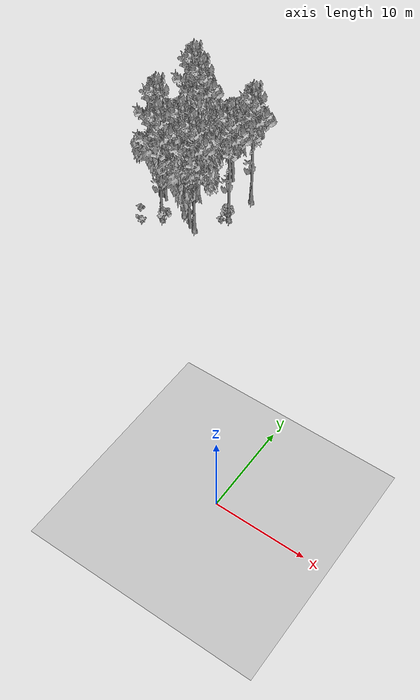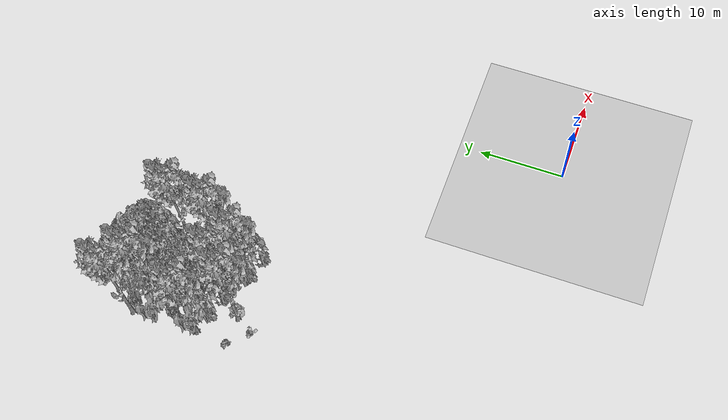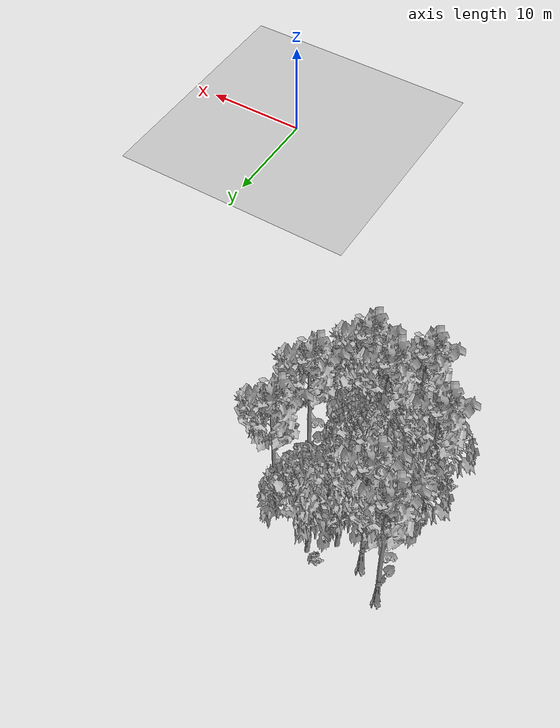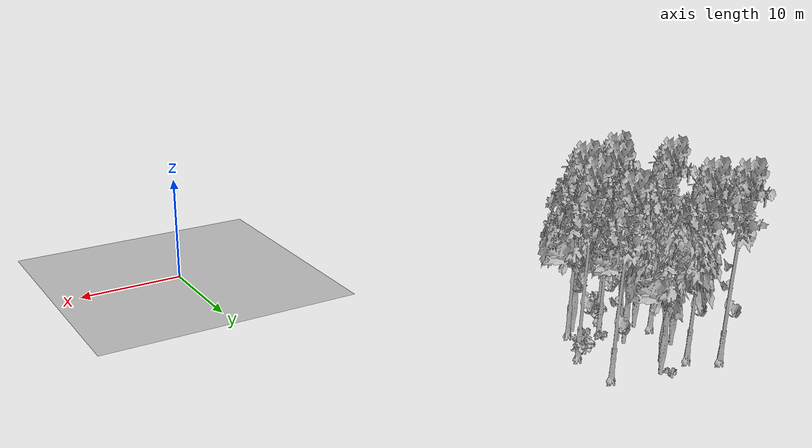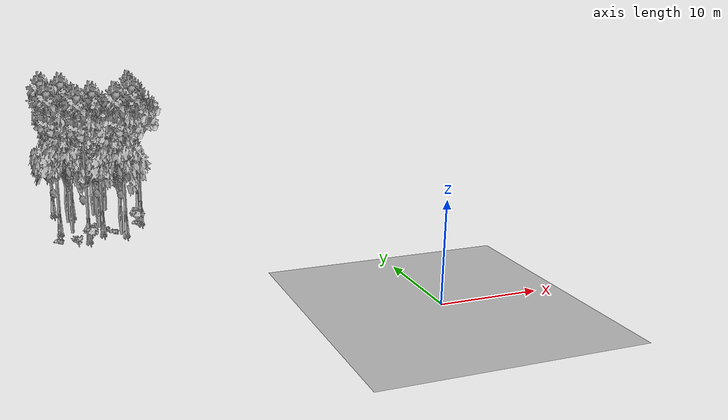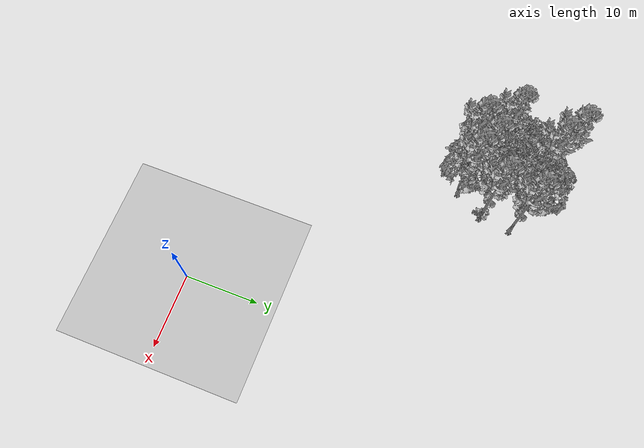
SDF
<sdf version="1.7">
 <world name="default">
  <model name="ground_plane">
   <static>1</static>
   <link name="link">
    <collision name="collision">
     <pose>-50 0 0 0 -0 0</pose>
     <geometry><plane><normal>0 0 1</normal><size>80 80</size></plane></geometry>
     <surface><contact><ode><min_depth>0.01</min_depth><max_vel>0</max_vel></ode></contact></surface>
    </collision>
    <visual name="grass">
     <cast_shadows>0</cast_shadows>
     <geometry>
      <mesh>
       <scale>0.46714285714285714 0.46714285714285714 0.1</scale>
       <uri>file://grass_plane/meshes/grass_plane.dae</uri>
      </mesh>
     </geometry>
    </visual>
   </link>
  </model>
  <model name="Tree 145">
   <static>1</static>
   <pose>-25.407689227858192 39.17718695805621 0 1.57079 -0 0</pose>
   <link name="link">
    <collision name="collision">
     <geometry><mesh><scale>3.5 5 3.5</scale><uri>model://tree_2/meshes/tree_2.obj</uri></mesh></geometry>
    </collision>
    <visual name="visual">
     <geometry><mesh><scale>3.5 5 3.5</scale><uri>model://tree_2/meshes/tree_2.obj</uri></mesh></geometry>
    </visual>
   </link>
  </model>
  <model name="Tree 158">
   <static>1</static>
   <pose>-26.893849686066908 32.80640094925998 0 1.57079 -0 0</pose>
   <link name="link">
    <collision name="collision">
     <geometry><mesh><scale>3.5 5 3.5</scale><uri>model://tree_2/meshes/tree_2.obj</uri></mesh></geometry>
    </collision>
    <visual name="visual">
     <geometry><mesh><scale>3.5 5 3.5</scale><uri>model://tree_2/meshes/tree_2.obj</uri></mesh></geometry>
    </visual>
   </link>
  </model>
  <model name="Tree 160">
   <static>1</static>
   <pose>-31.537245827972235 39.92862697853214 0 1.57079 -0 0</pose>
   <link name="link">
    <collision name="collision">
     <geometry><mesh><scale>3.5 5 3.5</scale><uri>model://tree_9/meshes/tree_9.obj</uri></mesh></geometry>
    </collision>
    <visual name="visual">
     <geometry><mesh><scale>3.5 5 3.5</scale><uri>model://tree_9/meshes/tree_9.obj</uri></mesh></geometry>
    </visual>
   </link>
  </model>
  <model name="Tree 196">
   <static>1</static>
   <pose>-27.047390081585156 37.61616186067823 0 1.57079 -0 0</pose>
   <link name="link">
    <collision name="collision">
     <geometry><mesh><scale>3.5 5 3.5</scale><uri>model://tree_2/meshes/tree_2.obj</uri></mesh></geometry>
    </collision>
    <visual name="visual">
     <geometry><mesh><scale>3.5 5 3.5</scale><uri>model://tree_2/meshes/tree_2.obj</uri></mesh></geometry>
    </visual>
   </link>
  </model>
  <model name="Tree 221">
   <static>1</static>
   <pose>-26.66061107534363 30.78839807381216 0 1.57079 -0 0</pose>
   <link name="link">
    <collision name="collision">
     <geometry><mesh><scale>3.5 5 3.5</scale><uri>model://tree_9/meshes/tree_9.obj</uri></mesh></geometry>
    </collision>
    <visual name="visual">
     <geometry><mesh><scale>3.5 5 3.5</scale><uri>model://tree_9/meshes/tree_9.obj</uri></mesh></geometry>
    </visual>
   </link>
  </model>
  <model name="Tree 232">
   <static>1</static>
   <pose>-28.47284868733135 28.7455706196951 0 1.57079 -0 0</pose>
   <link name="link">
    <collision name="collision">
     <geometry><mesh><scale>3.5 5 3.5</scale><uri>model://tree_9/meshes/tree_9.obj</uri></mesh></geometry>
    </collision>
    <visual name="visual">
     <geometry><mesh><scale>3.5 5 3.5</scale><uri>model://tree_9/meshes/tree_9.obj</uri></mesh></geometry>
    </visual>
   </link>
  </model>
  <model name="Tree 249">
   <static>1</static>
   <pose>-21.50053566201704 37.60155134436775 0 1.57079 -0 0</pose>
   <link name="link">
    <collision name="collision">
     <geometry><mesh><scale>3.5 5 3.5</scale><uri>model://tree_9/meshes/tree_9.obj</uri></mesh></geometry>
    </collision>
    <visual name="visual">
     <geometry><mesh><scale>3.5 5 3.5</scale><uri>model://tree_9/meshes/tree_9.obj</uri></mesh></geometry>
    </visual>
   </link>
  </model>
  <model name="Tree 253">
   <static>1</static>
   <pose>-24.864272763220793 29.417711909350118 0 1.57079 -0 0</pose>
   <link name="link">
    <collision name="collision">
     <geometry><mesh><scale>3.5 5 3.5</scale><uri>model://tree_2/meshes/tree_2.obj</uri></mesh></geometry>
    </collision>
    <visual name="visual">
     <geometry><mesh><scale>3.5 5 3.5</scale><uri>model://tree_2/meshes/tree_2.obj</uri></mesh></geometry>
    </visual>
   </link>
  </model>
  <model name="Tree 352">
   <static>1</static>
   <pose>-29.346305046535477 38.34455643908667 0 1.57079 -0 0</pose>
   <link name="link">
    <collision name="collision">
     <geometry><mesh><scale>3.5 5 3.5</scale><uri>model://tree_9/meshes/tree_9.obj</uri></mesh></geometry>
    </collision>
    <visual name="visual">
     <geometry><mesh><scale>3.5 5 3.5</scale><uri>model://tree_9/meshes/tree_9.obj</uri></mesh></geometry>
    </visual>
   </link>
  </model>
  <model name="Tree 391">
   <static>1</static>
   <pose>-31.33401969963979 32.33763831418214 0 1.57079 -0 0</pose>
   <link name="link">
    <collision name="collision">
     <geometry><mesh><scale>3.5 5 3.5</scale><uri>model://tree_9/meshes/tree_9.obj</uri></mesh></geometry>
    </collision>
    <visual name="visual">
     <geometry><mesh><scale>3.5 5 3.5</scale><uri>model://tree_9/meshes/tree_9.obj</uri></mesh></geometry>
    </visual>
   </link>
  </model>
  <model name="Tree 406">
   <static>1</static>
   <pose>-30.235914469718587 35.79286397625553 0 1.57079 -0 0</pose>
   <link name="link">
    <collision name="collision">
     <geometry><mesh><scale>3.5 5 3.5</scale><uri>model://tree_2/meshes/tree_2.obj</uri></mesh></geometry>
    </collision>
    <visual name="visual">
     <geometry><mesh><scale>3.5 5 3.5</scale><uri>model://tree_2/meshes/tree_2.obj</uri></mesh></geometry>
    </visual>
   </link>
  </model>
  <model name="Tree 422">
   <static>1</static>
   <pose>-24.210609356979056 29.510964219873827 0 1.57079 -0 0</pose>
   <link name="link">
    <collision name="collision">
     <geometry><mesh><scale>3.5 5 3.5</scale><uri>model://tree_9/meshes/tree_9.obj</uri></mesh></geometry>
    </collision>
    <visual name="visual">
     <geometry><mesh><scale>3.5 5 3.5</scale><uri>model://tree_9/meshes/tree_9.obj</uri></mesh></geometry>
    </visual>
   </link>
  </model>
  <model name="Tree 446">
   <static>1</static>
   <pose>-21.858472339495734 33.3301850074763 0 1.57079 -0 0</pose>
   <link name="link">
    <collision name="collision">
     <geometry><mesh><scale>3.5 5 3.5</scale><uri>model://tree_9/meshes/tree_9.obj</uri></mesh></geometry>
    </collision>
    <visual name="visual">
     <geometry><mesh><scale>3.5 5 3.5</scale><uri>model://tree_9/meshes/tree_9.obj</uri></mesh></geometry>
    </visual>
   </link>
  </model>
  <model name="Tree 582">
   <static>1</static>
   <pose>-30.119489291559567 31.60744863603027 0 1.57079 -0 0</pose>
   <link name="link">
    <collision name="collision">
     <geometry><mesh><scale>3.5 5 3.5</scale><uri>model://tree_2/meshes/tree_2.obj</uri></mesh></geometry>
    </collision>
    <visual name="visual">
     <geometry><mesh><scale>3.5 5 3.5</scale><uri>model://tree_2/meshes/tree_2.obj</uri></mesh></geometry>
    </visual>
   </link>
  </model>
  <model name="Tree 630">
   <static>1</static>
   <pose>-26.983941098379788 33.50466548291895 0 1.57079 -0 0</pose>
   <link name="link">
    <collision name="collision">
     <geometry><mesh><scale>3.5 5 3.5</scale><uri>model://tree_2/meshes/tree_2.obj</uri></mesh></geometry>
    </collision>
    <visual name="visual">
     <geometry><mesh><scale>3.5 5 3.5</scale><uri>model://tree_2/meshes/tree_2.obj</uri></mesh></geometry>
    </visual>
   </link>
  </model>
  <model name="Bush 14">
   <static>1</static>
   <pose>-28.18561033231137 28.66363035234022 0 1.57079 -0 0</pose>
   <link name="link">
    <collision name="collision">
     <geometry><mesh><scale>2 2 2</scale><uri>model://bush_1/meshes/bush_1.obj</uri></mesh></geometry>
     <surface><contact><collide_without_contact>false</collide_without_contact></contact></surface>
    </collision>
    <visual name="visual">
     <geometry><mesh><scale>2 2 2</scale><uri>model://bush_1/meshes/bush_1.obj</uri></mesh></geometry>
    </visual>
   </link>
  </model>
  <model name="Bush 92">
   <static>1</static>
   <pose>-31.78619848258945 28.719373626130462 0 1.57079 -0 0</pose>
   <link name="link">
    <collision name="collision">
     <geometry><mesh><scale>2 2 2</scale><uri>model://bush_2/meshes/bush_2.obj</uri></mesh></geometry>
     <surface><contact><collide_without_contact>false</collide_without_contact></contact></surface>
    </collision>
    <visual name="visual">
     <geometry><mesh><scale>2 2 2</scale><uri>model://bush_2/meshes/bush_2.obj</uri></mesh></geometry>
    </visual>
   </link>
  </model>
  <model name="Bush 222">
   <static>1</static>
   <pose>-22.267070292843073 33.38695965967541 0 1.57079 -0 0</pose>
   <link name="link">
    <collision name="collision">
     <geometry><mesh><scale>2 2 2</scale><uri>model://bush_1/meshes/bush_1.obj</uri></mesh></geometry>
     <surface><contact><collide_without_contact>false</collide_without_contact></contact></surface>
    </collision>
    <visual name="visual">
     <geometry><mesh><scale>2 2 2</scale><uri>model://bush_1/meshes/bush_1.obj</uri></mesh></geometry>
    </visual>
   </link>
  </model>
  <model name="Bush 233">
   <static>1</static>
   <pose>-22.550610455382817 32.629127784027716 0 1.57079 -0 0</pose>
   <link name="link">
    <collision name="collision">
     <geometry><mesh><scale>2 2 2</scale><uri>model://bush_2/meshes/bush_2.obj</uri></mesh></geometry>
     <surface><contact><collide_without_contact>false</collide_without_contact></contact></surface>
    </collision>
    <visual name="visual">
     <geometry><mesh><scale>2 2 2</scale><uri>model://bush_2/meshes/bush_2.obj</uri></mesh></geometry>
    </visual>
   </link>
  </model>
  <model name="Bush 246">
   <static>1</static>
   <pose>-26.179634503193803 39.45152946720631 0 1.57079 -0 0</pose>
   <link name="link">
    <collision name="collision">
     <geometry><mesh><scale>2 2 2</scale><uri>model://bush_2/meshes/bush_2.obj</uri></mesh></geometry>
     <surface><contact><collide_without_contact>false</collide_without_contact></contact></surface>
    </collision>
    <visual name="visual">
     <geometry><mesh><scale>2 2 2</scale><uri>model://bush_2/meshes/bush_2.obj</uri></mesh></geometry>
    </visual>
   </link>
  </model>
  <model name="Bush 301">
   <static>1</static>
   <pose>-25.515442180277194 30.208245047107496 0 1.57079 -0 0</pose>
   <link name="link">
    <collision name="collision">
     <geometry><mesh><scale>2 2 2</scale><uri>model://bush_2/meshes/bush_2.obj</uri></mesh></geometry>
     <surface><contact><collide_without_contact>false</collide_without_contact></contact></surface>
    </collision>
    <visual name="visual">
     <geometry><mesh><scale>2 2 2</scale><uri>model://bush_2/meshes/bush_2.obj</uri></mesh></geometry>
    </visual>
   </link>
  </model>
  <model name="Bush 418">
   <static>1</static>
   <pose>-21.924493594424433 33.21600243491615 0 1.57079 -0 0</pose>
   <link name="link">
    <collision name="collision">
     <geometry><mesh><scale>2 2 2</scale><uri>model://bush_5/meshes/bush_5.obj</uri></mesh></geometry>
     <surface><contact><collide_without_contact>false</collide_without_contact></contact></surface>
    </collision>
    <visual name="visual">
     <geometry><mesh><scale>2 2 2</scale><uri>model://bush_5/meshes/bush_5.obj</uri></mesh></geometry>
    </visual>
   </link>
  </model>
  <model name="Bush 552">
   <static>1</static>
   <pose>-29.845380185597556 26.51055577040661 0 1.57079 -0 0</pose>
   <link name="link">
    <collision name="collision">
     <geometry><mesh><scale>2 2 2</scale><uri>model://bush_0/meshes/bush_0.obj</uri></mesh></geometry>
     <surface><contact><collide_without_contact>false</collide_without_contact></contact></surface>
    </collision>
    <visual name="visual">
     <geometry><mesh><scale>2 2 2</scale><uri>model://bush_0/meshes/bush_0.obj</uri></mesh></geometry>
    </visual>
   </link>
  </model>
  <model name="Bush 588">
   <static>1</static>
   <pose>-26.342138493501924 31.450726165514 0 1.57079 -0 0</pose>
   <link name="link">
    <collision name="collision">
     <geometry><mesh><scale>2 2 2</scale><uri>model://bush_2/meshes/bush_2.obj</uri></mesh></geometry>
     <surface><contact><collide_without_contact>false</collide_without_contact></contact></surface>
    </collision>
    <visual name="visual">
     <geometry><mesh><scale>2 2 2</scale><uri>model://bush_2/meshes/bush_2.obj</uri></mesh></geometry>
    </visual>
   </link>
  </model>
 </world>
</sdf>
